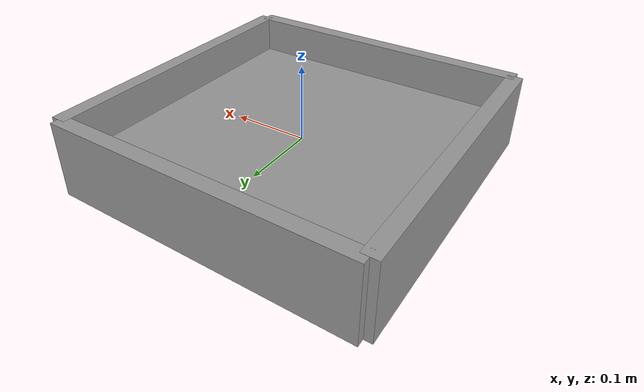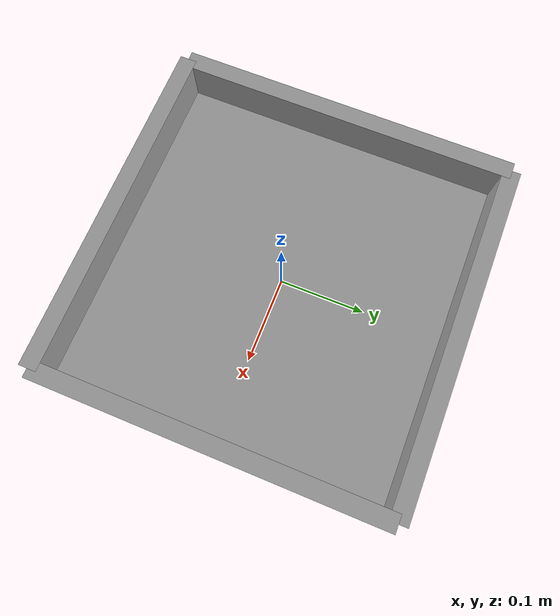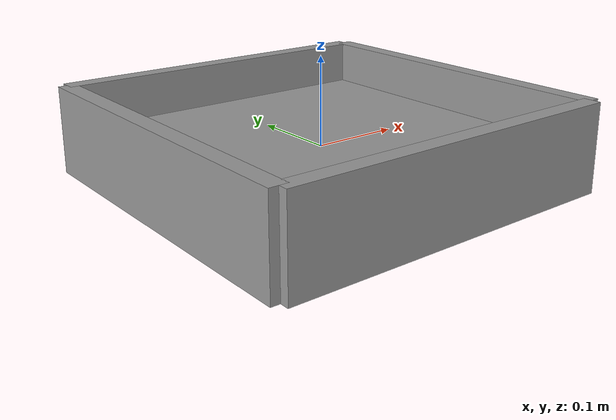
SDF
<?xml version="1.0" ?>
<sdf version="1.6">
  <model name="open_box">
    <static>false</static> <!-- Ensure the model is not static to enable physics -->

    <!-- Base of the open box -->
    <link name="base">
      <pose>0 0 0 0 0 0</pose>
      <collision name="collision">
        <geometry>
          <box>
            <size>0.4 0.4 0.02</size> <!-- Width, depth, height of base -->
          </box>
        </geometry>
      </collision>
      <visual name="visual">
        <geometry>
          <box>
            <size>0.4 0.4 0.02</size> <!-- Width, depth, height of base -->
          </box>
        </geometry>
        <material>
          <script>
            <uri>file://media/materials/scripts/gazebo.material</uri>
            <name>Gazebo/Grey</name> <!-- Use the selected standard material name here -->
          </script>
        </material>
      </visual>
    </link>

    <!-- Walls of the open box -->
    <link name="wall_1">
      <pose>0.2 0 0.01 0 0 0</pose> <!-- Adjust position relative to base -->
      <collision name="collision">
        <geometry>
          <box>
            <size>0.02 0.4 0.01</size> <!-- Width, depth, height of walls -->
          </box>
        </geometry>
      </collision>
      <visual name="visual">
        <geometry>
          <box>
            <size>0.02 0.4 0.1</size> <!-- Width, depth, height of walls -->
          </box>
        </geometry>
        <material>
          <script>
            <uri>file://media/materials/scripts/gazebo.material</uri>
            <name>Gazebo/Grey</name> <!-- Use the selected standard material name here -->
          </script>
        </material>
      </visual>
    </link>

    <link name="wall_2">
      <pose>-0.2 0 0.01 0 0 0</pose> <!-- Adjust position relative to base -->
      <collision name="collision">
        <geometry>
          <box>
            <size>0.02 0.4 0.01</size> <!-- Width, depth, height of walls -->
          </box>
        </geometry>
      </collision>
      <visual name="visual">
        <geometry>
          <box>
            <size>0.02 0.4 0.1</size> <!-- Width, depth, height of walls -->
          </box>

        </geometry>
        <material>
          <script>
            <uri>file://media/materials/scripts/gazebo.material</uri>
            <name>Gazebo/Grey</name> <!-- Use the selected standard material name here -->
          </script>
        </material>
      </visual>
    </link>

    <link name="wall_3">
      <pose>0 0.2 0.01 0 0 1.5708</pose> <!-- Adjust position relative to base and rotation -->
      <collision name="collision">
        <geometry>
          <box>
            <size>0.02 0.4 0.01</size> <!-- Width, depth, height of walls -->
          </box>
        </geometry>
      </collision>
      <visual name="visual">
        <geometry>
          <box>
            <size>0.02 0.4 0.1</size> <!-- Width, depth, height of walls -->
          </box>

        </geometry>
        <material>
          <script>
            <uri>file://media/materials/scripts/gazebo.material</uri>
            <name>Gazebo/Grey</name> <!-- Use the selected standard material name here -->
          </script>
        </material>
      </visual>
    </link>

    <link name="wall_4">
      <pose>0 -0.2 0.01 0 0 -1.5708</pose> <!-- Adjust position relative to base and rotation -->
      <collision name="collision">
        <geometry>
          <box>
            <size>0.02 0.4 0.01</size> <!-- Width, depth, height of walls -->
          </box>
        </geometry>
      </collision>
      <visual name="visual">
        <geometry>
          <box>
            <size>0.02 0.4 0.1</size> <!-- Width, depth, height of walls -->
          </box>

        </geometry>

        <material>
          <script>
            <uri>file://media/materials/scripts/gazebo.material</uri>
            <name>Gazebo/Grey</name> <!-- Use the selected standard material name here -->
          </script>
        </material>
      </visual>
    </link>

    <!-- Fixed joints between the base and walls -->
    <joint name="joint_wall_1" type="fixed">
      <parent>base</parent>
      <child>wall_1</child>
      <pose>0.2 0 0 0 0 0</pose> <!-- Adjust pose if necessary -->
    </joint>

    <joint name="joint_wall_2" type="fixed">
      <parent>base</parent>
      <child>wall_2</child>
      <pose>-0.2 0 0 0 0 0</pose> <!-- Adjust pose if necessary -->
    </joint>

    <joint name="joint_wall_3" type="fixed">
      <parent>base</parent>
      <child>wall_3</child>
      <pose>0 0.2 0 0 0 1.5708</pose> <!-- Adjust pose if necessary -->
    </joint>

    <joint name="joint_wall_4" type="fixed">
      <parent>base</parent>
      <child>wall_4</child>
      <pose>0 -0.2 0 0 0 -1.5708</pose> <!-- Adjust pose if necessary -->
    </joint>

    <!-- Set mass and inertia for the open box -->
    <inertial>
      <mass>1.0</mass>
      <inertia>
        <ixx>0.001333</ixx>
        <iyy>0.001333</iyy>
        <izz>0.002666</izz>
        <ixy>0</ixy>
        <ixz>0</ixz>
        <iyz>0</iyz>
      </inertia>
    </inertial>
  </model>
</sdf>
